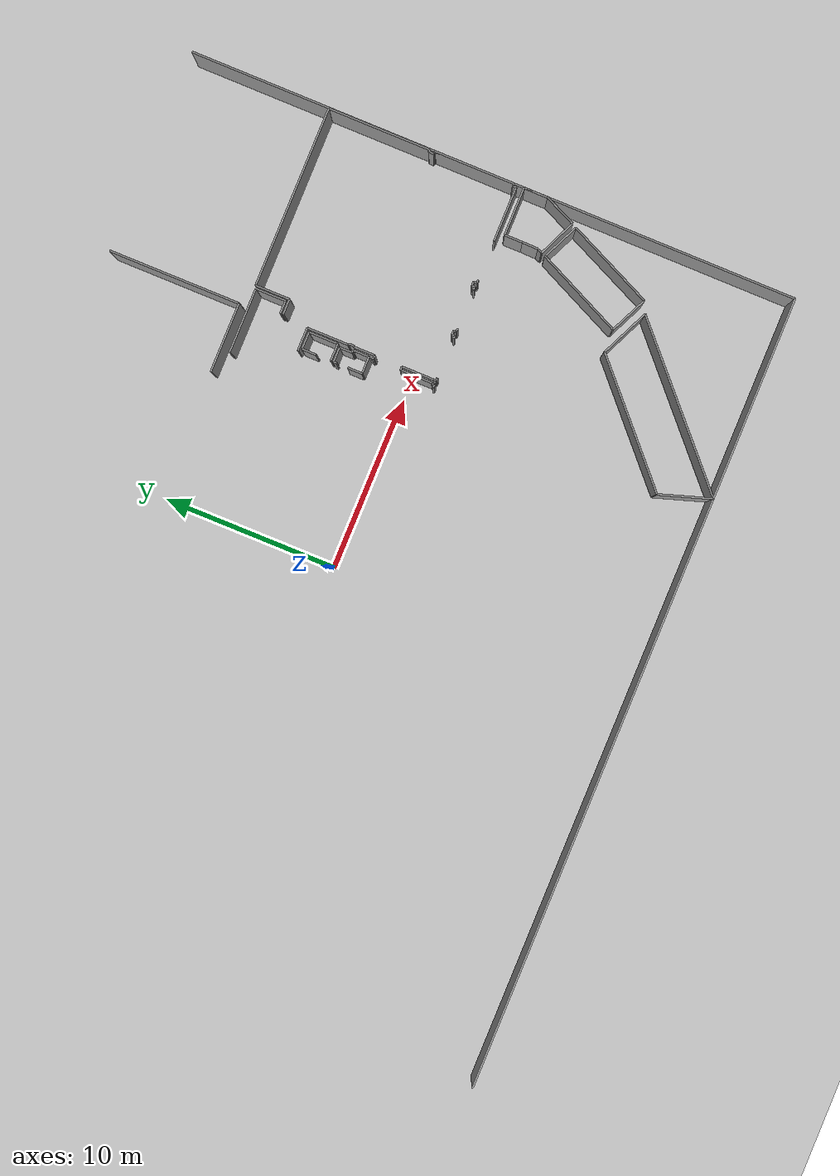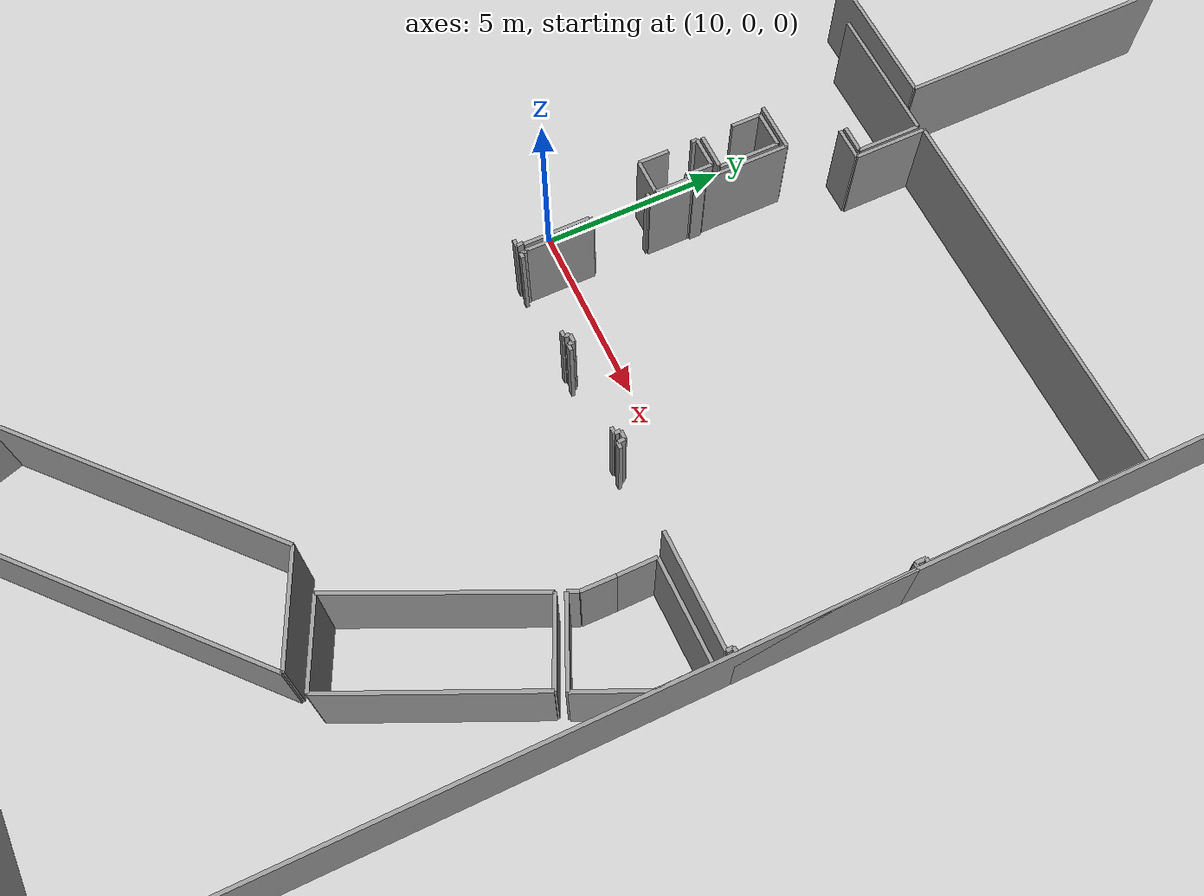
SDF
<sdf version="1.6">
 <world name="default">
  <model name="ground_plane">
   <static>1</static>
   <link name="link">
    <collision name="collision">
     <geometry><plane><normal>0 0 1</normal><size>100 100</size></plane></geometry>
     <surface><friction><ode><mu>100</mu><mu2>50</mu2></ode></friction></surface>
    </collision>
    <visual name="visual">
     <cast_shadows>0</cast_shadows>
     <geometry><plane><normal>0 0 1</normal><size>100 100</size></plane></geometry>
     <material>
      <script><uri>file://media/materials/scripts/gazebo.material</uri><name>Gazebo/Grey</name></script>
     </material>
    </visual>
   </link>
  </model>
  <model name="50009418">
   <static>1</static>
   <link name="Wall_43">
    <collision name="Wall_43_Collision">
     <geometry><box><size>3.13245217921 0.1 2.5</size></box></geometry>
     <pose>1.5662260896 0 1.25 0 0 0</pose>
    </collision>
    <visual name="Wall_43_Visual">
     <pose>1.5662260896 0 1.25 0 0 0</pose>
     <geometry><box><size>3.13245217921 0.1 2.5</size></box></geometry>
     <material>
      <script><uri>file://media/materials/scripts/gazebo.material</uri><name>Gazebo/Grey</name></script>
      <ambient>1 1 1 1</ambient>
     </material>
    </visual>
    <pose>45.5923689685 -18.9636079963 0 0 0 3.14159265359</pose>
   </link>
   <link name="Wall_44">
    <collision name="Wall_44_Collision">
     <geometry><box><size>0.179486528997 0.1 2.5</size></box></geometry>
     <pose>0.0897432644985 0 1.25 0 0 0</pose>
    </collision>
    <visual name="Wall_44_Visual">
     <pose>0.0897432644985 0 1.25 0 0 0</pose>
     <geometry><box><size>0.179486528997 0.1 2.5</size></box></geometry>
     <material>
      <script><uri>file://media/materials/scripts/gazebo.material</uri><name>Gazebo/Grey</name></script>
      <ambient>1 1 1 1</ambient>
     </material>
    </visual>
    <pose>40.1836724339 -18.9636079963 0 0 0 3.14159265359</pose>
   </link>
   <link name="Wall_45">
    <collision name="Wall_45_Collision">
     <geometry><box><size>0.184116393526 0.1 2.5</size></box></geometry>
     <pose>0.0920581967629 0 1.25 0 0 0</pose>
    </collision>
    <visual name="Wall_45_Visual">
     <pose>0.0920581967629 0 1.25 0 0 0</pose>
     <geometry><box><size>0.184116393526 0.1 2.5</size></box></geometry>
     <material>
      <script><uri>file://media/materials/scripts/gazebo.material</uri><name>Gazebo/Grey</name></script>
      <ambient>1 1 1 1</ambient>
     </material>
    </visual>
    <pose>40.0041859049 -18.9636079963 0 0 0 1.57079632679</pose>
   </link>
   <link name="Wall_46">
    <collision name="Wall_46_Collision">
     <geometry><box><size>0.233395910498 0.1 2.5</size></box></geometry>
     <pose>0.116697955249 0 1.25 0 0 0</pose>
    </collision>
    <visual name="Wall_46_Visual">
     <pose>0.116697955249 0 1.25 0 0 0</pose>
     <geometry><box><size>0.233395910498 0.1 2.5</size></box></geometry>
     <material>
      <script><uri>file://media/materials/scripts/gazebo.material</uri><name>Gazebo/Grey</name></script>
      <ambient>1 1 1 1</ambient>
     </material>
    </visual>
    <pose>40.0041859049 -18.7794916028 0 0 0 3.14159265359</pose>
   </link>
   <link name="Wall_47">
    <collision name="Wall_47_Collision">
     <geometry><box><size>0.158493581612 0.1 2.5</size></box></geometry>
     <pose>0.0792467908062 0 1.25 0 0 0</pose>
    </collision>
    <visual name="Wall_47_Visual">
     <pose>0.0792467908062 0 1.25 0 0 0</pose>
     <geometry><box><size>0.158493581612 0.1 2.5</size></box></geometry>
     <material>
      <script><uri>file://media/materials/scripts/gazebo.material</uri><name>Gazebo/Grey</name></script>
      <ambient>1 1 1 1</ambient>
     </material>
    </visual>
    <pose>39.7707899944 -18.7794916028 0 0 0 -1.57079632679</pose>
   </link>
   <link name="Wall_48">
    <collision name="Wall_48_Collision">
     <geometry><box><size>0.179486528997 0.1 2.5</size></box></geometry>
     <pose>0.0897432644985 0 1.25 0 0 0</pose>
    </collision>
    <visual name="Wall_48_Visual">
     <pose>0.0897432644985 0 1.25 0 0 0</pose>
     <geometry><box><size>0.179486528997 0.1 2.5</size></box></geometry>
     <material>
      <script><uri>file://media/materials/scripts/gazebo.material</uri><name>Gazebo/Grey</name></script>
      <ambient>1 1 1 1</ambient>
     </material>
    </visual>
    <pose>39.7707899944 -18.9379851844 0 0 0 3.14159265359</pose>
   </link>
   <link name="Wall_49">
    <collision name="Wall_49_Collision">
     <geometry><box><size>0.187731493226 0.1 2.5</size></box></geometry>
     <pose>0.0938657466132 0 1.25 0 0 0</pose>
    </collision>
    <visual name="Wall_49_Visual">
     <pose>0.0938657466132 0 1.25 0 0 0</pose>
     <geometry><box><size>0.187731493226 0.1 2.5</size></box></geometry>
     <material>
      <script><uri>file://media/materials/scripts/gazebo.material</uri><name>Gazebo/Grey</name></script>
      <ambient>1 1 1 1</ambient>
     </material>
    </visual>
    <pose>37.3397940027 -18.9379851844 0 0 0 3.14159265359</pose>
   </link>
   <link name="Wall_50">
    <collision name="Wall_50_Collision">
     <geometry><box><size>0.150121771779 0.1 2.5</size></box></geometry>
     <pose>0.0750608858897 0 1.25 0 0 0</pose>
    </collision>
    <visual name="Wall_50_Visual">
     <pose>0.0750608858897 0 1.25 0 0 0</pose>
     <geometry><box><size>0.150121771779 0.1 2.5</size></box></geometry>
     <material>
      <script><uri>file://media/materials/scripts/gazebo.material</uri><name>Gazebo/Grey</name></script>
      <ambient>1 1 1 1</ambient>
     </material>
    </visual>
    <pose>37.1520625095 -18.9379851844 0 0 0 1.57079632679</pose>
   </link>
   <link name="Wall_51">
    <collision name="Wall_51_Collision">
     <geometry><box><size>0.237835506621 0.1 2.5</size></box></geometry>
     <pose>0.118917753311 0 1.25 0 0 0</pose>
    </collision>
    <visual name="Wall_51_Visual">
     <pose>0.118917753311 0 1.25 0 0 0</pose>
     <geometry><box><size>0.237835506621 0.1 2.5</size></box></geometry>
     <material>
      <script><uri>file://media/materials/scripts/gazebo.material</uri><name>Gazebo/Grey</name></script>
      <ambient>1 1 1 1</ambient>
     </material>
    </visual>
    <pose>37.1520625095 -18.7878634127 0 0 0 3.14159265359</pose>
   </link>
   <link name="Wall_52">
    <collision name="Wall_52_Collision">
     <geometry><box><size>0.154307676696 0.1 2.5</size></box></geometry>
     <pose>0.077153838348 0 1.25 0 0 0</pose>
    </collision>
    <visual name="Wall_52_Visual">
     <pose>0.077153838348 0 1.25 0 0 0</pose>
     <geometry><box><size>0.154307676696 0.1 2.5</size></box></geometry>
     <material>
      <script><uri>file://media/materials/scripts/gazebo.material</uri><name>Gazebo/Grey</name></script>
      <ambient>1 1 1 1</ambient>
     </material>
    </visual>
    <pose>36.9142270029 -18.7878634127 0 0 0 -1.57079632679</pose>
   </link>
   <link name="Wall_53">
    <collision name="Wall_53_Collision">
     <geometry><box><size>0.158557004414 0.1 2.5</size></box></geometry>
     <pose>0.0792785022071 0 1.25 0 0 0</pose>
    </collision>
    <visual name="Wall_53_Visual">
     <pose>0.0792785022071 0 1.25 0 0 0</pose>
     <geometry><box><size>0.158557004414 0.1 2.5</size></box></geometry>
     <material>
      <script><uri>file://media/materials/scripts/gazebo.material</uri><name>Gazebo/Grey</name></script>
      <ambient>1 1 1 1</ambient>
     </material>
    </visual>
    <pose>36.9142270029 -18.9421710894 0 0 0 3.14159265359</pose>
   </link>
   <link name="Wall_54">
    <collision name="Wall_54_Collision">
     <geometry><box><size>0.145872444061 0.1 2.5</size></box></geometry>
     <pose>0.0729362220305 0 1.25 0 0 0</pose>
    </collision>
    <visual name="Wall_54_Visual">
     <pose>0.0729362220305 0 1.25 0 0 0</pose>
     <geometry><box><size>0.145872444061 0.1 2.5</size></box></geometry>
     <material>
      <script><uri>file://media/materials/scripts/gazebo.material</uri><name>Gazebo/Grey</name></script>
      <ambient>1 1 1 1</ambient>
     </material>
    </visual>
    <pose>34.4661068547 -18.9421710894 0 0 0 3.14159265359</pose>
   </link>
   <link name="Wall_55">
    <collision name="Wall_55_Collision">
     <geometry><box><size>0.148155664925 0.1 2.5</size></box></geometry>
     <pose>0.0740778324623 0 1.25 0 0 0</pose>
    </collision>
    <visual name="Wall_55_Visual">
     <pose>0.0740778324623 0 1.25 0 0 0</pose>
     <geometry><box><size>0.148155664925 0.1 2.5</size></box></geometry>
     <material>
      <script><uri>file://media/materials/scripts/gazebo.material</uri><name>Gazebo/Grey</name></script>
      <ambient>1 1 1 1</ambient>
     </material>
    </visual>
    <pose>34.3202344107 -18.9421710894 0 0 0 1.57079632679</pose>
   </link>
   <link name="Wall_56">
    <collision name="Wall_56_Collision">
     <geometry><box><size>0.020295296565 0.1 2.5</size></box></geometry>
     <pose>0.0101476482825 0 1.25 0 0 0</pose>
    </collision>
    <visual name="Wall_56_Visual">
     <pose>0.0101476482825 0 1.25 0 0 0</pose>
     <geometry><box><size>0.020295296565 0.1 2.5</size></box></geometry>
     <material>
      <script><uri>file://media/materials/scripts/gazebo.material</uri><name>Gazebo/Grey</name></script>
      <ambient>1 1 1 1</ambient>
     </material>
    </visual>
    <pose>34.3202344107 -18.7940154244 0 0 0 3.14159265359</pose>
   </link>
   <link name="Wall_57">
    <collision name="Wall_57_Collision">
     <geometry><box><size>1.84775990664 0.1 2.5</size></box></geometry>
     <pose>0.923879953321 0 1.25 0 0 0</pose>
    </collision>
    <visual name="Wall_57_Visual">
     <pose>0.923879953321 0 1.25 0 0 0</pose>
     <geometry><box><size>1.84775990664 0.1 2.5</size></box></geometry>
     <material>
      <script><uri>file://media/materials/scripts/gazebo.material</uri><name>Gazebo/Grey</name></script>
      <ambient>1 1 1 1</ambient>
     </material>
    </visual>
    <pose>34.2999391141 -18.7940154244 0 0 0 1.57079632679</pose>
   </link>
   <link name="Wall_58">
    <collision name="Wall_58_Collision">
     <geometry><box><size>0.182657669085 0.1 2.5</size></box></geometry>
     <pose>0.0913288345426 0 1.25 0 0 0</pose>
    </collision>
    <visual name="Wall_58_Visual">
     <pose>0.0913288345426 0 1.25 0 0 0</pose>
     <geometry><box><size>0.182657669085 0.1 2.5</size></box></geometry>
     <material>
      <script><uri>file://media/materials/scripts/gazebo.material</uri><name>Gazebo/Grey</name></script>
      <ambient>1 1 1 1</ambient>
     </material>
    </visual>
    <pose>34.2999391141 -16.9462555178 0 0 0 3.14159265359</pose>
   </link>
   <link name="Wall_62">
    <collision name="Wall_62_Collision">
     <geometry><box><size>0.0943097062256 0.1 2.5</size></box></geometry>
     <pose>0.0471548531128 0 1.25 0 0 0</pose>
    </collision>
    <visual name="Wall_62_Visual">
     <pose>0.0471548531128 0 1.25 0 0 0</pose>
     <geometry><box><size>0.0943097062256 0.1 2.5</size></box></geometry>
     <material>
      <script><uri>file://media/materials/scripts/gazebo.material</uri><name>Gazebo/Grey</name></script>
      <ambient>1 1 1 1</ambient>
     </material>
    </visual>
    <pose>34.1229894972 -15.2827388503 0 0 0 -1.57079632679</pose>
   </link>
   <link name="Wall_63">
    <collision name="Wall_63_Collision">
     <geometry><box><size>0.18138921305 0.1 2.5</size></box></geometry>
     <pose>0.0906946065249 0 1.25 0 0 0</pose>
    </collision>
    <visual name="Wall_63_Visual">
     <pose>0.0906946065249 0 1.25 0 0 0</pose>
     <geometry><box><size>0.18138921305 0.1 2.5</size></box></geometry>
     <material>
      <script><uri>file://media/materials/scripts/gazebo.material</uri><name>Gazebo/Grey</name></script>
      <ambient>1 1 1 1</ambient>
     </material>
    </visual>
    <pose>34.1229894972 -15.3770485565 0 0 0 0.0</pose>
   </link>
   <link name="Wall_64">
    <collision name="Wall_64_Collision">
     <geometry><box><size>1.21118524532 0.1 2.5</size></box></geometry>
     <pose>0.60559262266 0 1.25 0 0 0</pose>
    </collision>
    <visual name="Wall_64_Visual">
     <pose>0.60559262266 0 1.25 0 0 0</pose>
     <geometry><box><size>1.21118524532 0.1 2.5</size></box></geometry>
     <material>
      <script><uri>file://media/materials/scripts/gazebo.material</uri><name>Gazebo/Grey</name></script>
      <ambient>1 1 1 1</ambient>
     </material>
    </visual>
    <pose>34.3043787102 -15.3770485565 0 0 0 1.57079632679</pose>
   </link>
   <link name="Wall_65">
    <collision name="Wall_65_Collision">
     <geometry><box><size>0.0507382414125 0.1 2.5</size></box></geometry>
     <pose>0.0253691207063 0 1.25 0 0 0</pose>
    </collision>
    <visual name="Wall_65_Visual">
     <pose>0.0253691207063 0 1.25 0 0 0</pose>
     <geometry><box><size>0.0507382414125 0.1 2.5</size></box></geometry>
     <material>
      <script><uri>file://media/materials/scripts/gazebo.material</uri><name>Gazebo/Grey</name></script>
      <ambient>1 1 1 1</ambient>
     </material>
    </visual>
    <pose>34.3043787102 -14.1658633112 0 0 0 0.0</pose>
   </link>
   <link name="Wall_66">
    <collision name="Wall_66_Collision">
     <geometry><box><size>0.333603937288 0.1 2.5</size></box></geometry>
     <pose>0.166801968644 0 1.25 0 0 0</pose>
    </collision>
    <visual name="Wall_66_Visual">
     <pose>0.166801968644 0 1.25 0 0 0</pose>
     <geometry><box><size>0.333603937288 0.1 2.5</size></box></geometry>
     <material>
      <script><uri>file://media/materials/scripts/gazebo.material</uri><name>Gazebo/Grey</name></script>
      <ambient>1 1 1 1</ambient>
     </material>
    </visual>
    <pose>34.3551169516 -14.1658633112 0 0 0 1.57079632679</pose>
   </link>
   <link name="Wall_67">
    <collision name="Wall_67_Collision">
     <geometry><box><size>0.0577147496068 0.1 2.5</size></box></geometry>
     <pose>0.0288573748034 0 1.25 0 0 0</pose>
    </collision>
    <visual name="Wall_67_Visual">
     <pose>0.0288573748034 0 1.25 0 0 0</pose>
     <geometry><box><size>0.0577147496068 0.1 2.5</size></box></geometry>
     <material>
      <script><uri>file://media/materials/scripts/gazebo.material</uri><name>Gazebo/Grey</name></script>
      <ambient>1 1 1 1</ambient>
     </material>
    </visual>
    <pose>34.3551169516 -13.8322593739 0 0 0 3.14159265359</pose>
   </link>
   <link name="Wall_68">
    <collision name="Wall_68_Collision">
     <geometry><box><size>2.38843929169 0.1 2.5</size></box></geometry>
     <pose>1.19421964585 0 1.25 0 0 0</pose>
    </collision>
    <visual name="Wall_68_Visual">
     <pose>1.19421964585 0 1.25 0 0 0</pose>
     <geometry><box><size>2.38843929169 0.1 2.5</size></box></geometry>
     <material>
      <script><uri>file://media/materials/scripts/gazebo.material</uri><name>Gazebo/Grey</name></script>
      <ambient>1 1 1 1</ambient>
     </material>
    </visual>
    <pose>34.297402202 -13.8322593739 0 0 0 1.57079632679</pose>
   </link>
   <link name="Wall_69">
    <collision name="Wall_69_Collision">
     <geometry><box><size>1.32160434319 0.1 2.5</size></box></geometry>
     <pose>0.660802171597 0 1.25 0 0 0</pose>
    </collision>
    <visual name="Wall_69_Visual">
     <pose>0.660802171597 0 1.25 0 0 0</pose>
     <geometry><box><size>1.32160434319 0.1 2.5</size></box></geometry>
     <material>
      <script><uri>file://media/materials/scripts/gazebo.material</uri><name>Gazebo/Grey</name></script>
      <ambient>1 1 1 1</ambient>
     </material>
    </visual>
    <pose>34.297402202 -11.4438200822 0 0 0 3.14159265359</pose>
   </link>
   <link name="Wall_71">
    <collision name="Wall_71_Collision">
     <geometry><box><size>0.887284996702 0.1 2.5</size></box></geometry>
     <pose>0.443642498351 0 1.25 0 0 0</pose>
    </collision>
    <visual name="Wall_71_Visual">
     <pose>0.443642498351 0 1.25 0 0 0</pose>
     <geometry><box><size>0.887284996702 0.1 2.5</size></box></geometry>
     <material>
      <script><uri>file://media/materials/scripts/gazebo.material</uri><name>Gazebo/Grey</name></script>
      <ambient>1 1 1 1</ambient>
     </material>
    </visual>
    <pose>34.4724491349 -9.96822517632 0 0 0 0.0</pose>
   </link>
   <link name="Wall_72">
    <collision name="Wall_72_Collision">
     <geometry><box><size>1.97105383327 0.1 2.5</size></box></geometry>
     <pose>0.985526916637 0 1.25 0 0 0</pose>
    </collision>
    <visual name="Wall_72_Visual">
     <pose>0.985526916637 0 1.25 0 0 0</pose>
     <geometry><box><size>1.97105383327 0.1 2.5</size></box></geometry>
     <material>
      <script><uri>file://media/materials/scripts/gazebo.material</uri><name>Gazebo/Grey</name></script>
      <ambient>1 1 1 1</ambient>
     </material>
    </visual>
    <pose>35.3597341316 -9.96822517632 0 0 0 1.57079632679</pose>
   </link>
   <link name="Wall_73">
    <collision name="Wall_73_Collision">
     <geometry><box><size>10.3474301081 0.1 2.5</size></box></geometry>
     <pose>5.17371505404 0 1.25 0 0 0</pose>
    </collision>
    <visual name="Wall_73_Visual">
     <pose>5.17371505404 0 1.25 0 0 0</pose>
     <geometry><box><size>10.3474301081 0.1 2.5</size></box></geometry>
     <material>
      <script><uri>file://media/materials/scripts/gazebo.material</uri><name>Gazebo/Grey</name></script>
      <ambient>1 1 1 1</ambient>
     </material>
    </visual>
    <pose>35.3597341316 -7.99717134304 0 0 0 0.0</pose>
   </link>
   <link name="Wall_74">
    <collision name="Wall_74_Collision">
     <geometry><box><size>5.88595311786 0.1 2.5</size></box></geometry>
     <pose>2.94297655893 0 1.25 0 0 0</pose>
    </collision>
    <visual name="Wall_74_Visual">
     <pose>2.94297655893 0 1.25 0 0 0</pose>
     <geometry><box><size>5.88595311786 0.1 2.5</size></box></geometry>
     <material>
      <script><uri>file://media/materials/scripts/gazebo.material</uri><name>Gazebo/Grey</name></script>
      <ambient>1 1 1 1</ambient>
     </material>
    </visual>
    <pose>45.7071642397 -7.99717134304 0 0 0 -1.57079632679</pose>
   </link>
   <link name="Wall_75">
    <collision name="Wall_75_Collision">
     <geometry><box><size>0.117966411284 0.1 2.5</size></box></geometry>
     <pose>0.0589832056421 0 1.25 0 0 0</pose>
    </collision>
    <visual name="Wall_75_Visual">
     <pose>0.0589832056421 0 1.25 0 0 0</pose>
     <geometry><box><size>0.117966411284 0.1 2.5</size></box></geometry>
     <material>
      <script><uri>file://media/materials/scripts/gazebo.material</uri><name>Gazebo/Grey</name></script>
      <ambient>1 1 1 1</ambient>
     </material>
    </visual>
    <pose>45.7071642397 -13.8831244609 0 0 0 3.14159265359</pose>
   </link>
   <link name="Wall_76">
    <collision name="Wall_76_Collision">
     <geometry><box><size>0.281089857426 0.1 2.5</size></box></geometry>
     <pose>0.140544928713 0 1.25 0 0 0</pose>
    </collision>
    <visual name="Wall_76_Visual">
     <pose>0.140544928713 0 1.25 0 0 0</pose>
     <geometry><box><size>0.281089857426 0.1 2.5</size></box></geometry>
     <material>
      <script><uri>file://media/materials/scripts/gazebo.material</uri><name>Gazebo/Grey</name></script>
      <ambient>1 1 1 1</ambient>
     </material>
    </visual>
    <pose>45.5891978284 -13.8831244609 0 0 0 -1.57079632679</pose>
   </link>
   <link name="Wall_77">
    <collision name="Wall_77_Collision">
     <geometry><box><size>0.145872444061 0.1 2.5</size></box></geometry>
     <pose>0.0729362220305 0 1.25 0 0 0</pose>
    </collision>
    <visual name="Wall_77_Visual">
     <pose>0.0729362220305 0 1.25 0 0 0</pose>
     <geometry><box><size>0.145872444061 0.1 2.5</size></box></geometry>
     <material>
      <script><uri>file://media/materials/scripts/gazebo.material</uri><name>Gazebo/Grey</name></script>
      <ambient>1 1 1 1</ambient>
     </material>
    </visual>
    <pose>45.5891978284 -14.1642143183 0 0 0 0.0</pose>
   </link>
   <link name="Wall_78">
    <collision name="Wall_78_Collision">
     <geometry><box><size>4.61115480237 0.1 2.5</size></box></geometry>
     <pose>2.30557740119 0 1.25 0 0 0</pose>
    </collision>
    <visual name="Wall_78_Visual">
     <pose>2.30557740119 0 1.25 0 0 0</pose>
     <geometry><box><size>4.61115480237 0.1 2.5</size></box></geometry>
     <material>
      <script><uri>file://media/materials/scripts/gazebo.material</uri><name>Gazebo/Grey</name></script>
      <ambient>1 1 1 1</ambient>
     </material>
    </visual>
    <pose>45.7350702725 -14.1642143183 0 0 0 -1.57079632679</pose>
   </link>
   <link name="Wall_79">
    <collision name="Wall_79_Collision">
     <geometry><box><size>0.154117408291 0.1 2.5</size></box></geometry>
     <pose>0.0770587041453 0 1.25 0 0 0</pose>
    </collision>
    <visual name="Wall_79_Visual">
     <pose>0.0770587041453 0 1.25 0 0 0</pose>
     <geometry><box><size>0.154117408291 0.1 2.5</size></box></geometry>
     <material>
      <script><uri>file://media/materials/scripts/gazebo.material</uri><name>Gazebo/Grey</name></script>
      <ambient>1 1 1 1</ambient>
     </material>
    </visual>
    <pose>45.7350702725 -18.7753691207 0 0 0 3.14159265359</pose>
   </link>
   <link name="Wall_80">
    <collision name="Wall_80_Collision">
     <geometry><box><size>0.188584733582 0.1 2.5</size></box></geometry>
     <pose>0.094292366791 0 1.25 0 0 0</pose>
    </collision>
    <visual name="Wall_80_Visual">
     <pose>0.094292366791 0 1.25 0 0 0</pose>
     <geometry><box><size>0.188584733582 0.1 2.5</size></box></geometry>
     <material>
      <script><uri>file://media/materials/scripts/gazebo.material</uri><name>Gazebo/Grey</name></script>
      <ambient>1 1 1 1</ambient>
     </material>
    </visual>
    <pose>45.5809528642 -18.7753691207 0 0 0 -1.51022361691</pose>
   </link>
   <link name="Wall_81">
    <collision name="Wall_81_Collision">
     <geometry><box><size>1.7312522198 0.1 2.5</size></box></geometry>
     <pose>0.865626109899 0 1.25 0 0 0</pose>
    </collision>
    <visual name="Wall_81_Visual">
     <pose>0.865626109899 0 1.25 0 0 0</pose>
     <geometry><box><size>1.7312522198 0.1 2.5</size></box></geometry>
     <material>
      <script><uri>file://media/materials/scripts/gazebo.material</uri><name>Gazebo/Grey</name></script>
      <ambient>1 1 1 1</ambient>
     </material>
    </visual>
    <pose>35.2100563194 -9.80992186311 0 0 0 1.57079632679</pose>
   </link>
   <link name="Wall_82">
    <collision name="Wall_82_Collision">
     <geometry><box><size>3.72520168451 0.1 2.5</size></box></geometry>
     <pose>1.86260084225 0 1.25 0 0 0</pose>
    </collision>
    <visual name="Wall_82_Visual">
     <pose>1.86260084225 0 1.25 0 0 0</pose>
     <geometry><box><size>3.72520168451 0.1 2.5</size></box></geometry>
     <material>
      <script><uri>file://media/materials/scripts/gazebo.material</uri><name>Gazebo/Grey</name></script>
      <ambient>1 1 1 1</ambient>
     </material>
    </visual>
    <pose>35.2100563194 -8.07866964331 0 0 0 3.14159265359</pose>
   </link>
   <link name="Wall_85">
    <collision name="Wall_85_Collision">
     <geometry><box><size>0.747148065076 0.1 2.5</size></box></geometry>
     <pose>0.373574032538 0 1.25 0 0 0</pose>
    </collision>
    <visual name="Wall_85_Visual">
     <pose>0.373574032538 0 1.25 0 0 0</pose>
     <geometry><box><size>0.747148065076 0.1 2.5</size></box></geometry>
     <material>
      <script><uri>file://media/materials/scripts/gazebo.material</uri><name>Gazebo/Grey</name></script>
      <ambient>1 1 1 1</ambient>
     </material>
    </visual>
    <pose>34.4629357146 -9.80351616013 0 0 0 -0.0085736439083</pose>
   </link>
   <link name="Wall_94">
    <collision name="Wall_94_Collision">
     <geometry><box><size>0.187097265209 0.1 2.5</size></box></geometry>
     <pose>0.0935486326044 0 1.25 0 0 0</pose>
    </collision>
    <visual name="Wall_94_Visual">
     <pose>0.0935486326044 0 1.25 0 0 0</pose>
     <geometry><box><size>0.187097265209 0.1 2.5</size></box></geometry>
     <material>
      <script><uri>file://media/materials/scripts/gazebo.material</uri><name>Gazebo/Grey</name></script>
      <ambient>1 1 1 1</ambient>
     </material>
    </visual>
    <pose>34.0843015881 -18.9409026333 0 0 0 3.14159265359</pose>
   </link>
   <link name="Wall_99">
    <collision name="Wall_99_Collision">
     <geometry><box><size>1.80983307119 0.1 2.5</size></box></geometry>
     <pose>0.904916535593 0 1.25 0 0 0</pose>
    </collision>
    <visual name="Wall_99_Visual">
     <pose>0.904916535593 0 1.25 0 0 0</pose>
     <geometry><box><size>1.80983307119 0.1 2.5</size></box></geometry>
     <material>
      <script><uri>file://media/materials/scripts/gazebo.material</uri><name>Gazebo/Grey</name></script>
      <ambient>1 1 1 1</ambient>
     </material>
    </visual>
    <pose>34.116012989 -16.9613501446 0 0 0 -1.57079632679</pose>
   </link>
   <link name="Wall_100">
    <collision name="Wall_100_Collision">
     <geometry><box><size>0.0437617332183 0.1 2.5</size></box></geometry>
     <pose>0.0218808666092 0 1.25 0 0 0</pose>
    </collision>
    <visual name="Wall_100_Visual">
     <pose>0.0218808666092 0 1.25 0 0 0</pose>
     <geometry><box><size>0.0437617332183 0.1 2.5</size></box></geometry>
     <material>
      <script><uri>file://media/materials/scripts/gazebo.material</uri><name>Gazebo/Grey</name></script>
      <ambient>1 1 1 1</ambient>
     </material>
    </visual>
    <pose>34.116012989 -18.7711832158 0 0 0 3.14159265359</pose>
   </link>
   <link name="Wall_101">
    <collision name="Wall_101_Collision">
     <geometry><box><size>0.170146675531 0.1 2.5</size></box></geometry>
     <pose>0.0850733377657 0 1.25 0 0 0</pose>
    </collision>
    <visual name="Wall_101_Visual">
     <pose>0.0850733377657 0 1.25 0 0 0</pose>
     <geometry><box><size>0.170146675531 0.1 2.5</size></box></geometry>
     <material>
      <script><uri>file://media/materials/scripts/gazebo.material</uri><name>Gazebo/Grey</name></script>
      <ambient>1 1 1 1</ambient>
     </material>
    </visual>
    <pose>34.0722512558 -18.7711832158 0 0 0 -1.49991378364</pose>
   </link>
   <link name="Wall_102">
    <collision name="Wall_102_Collision">
     <geometry><box><size>0.992313156426 0.1 2.5</size></box></geometry>
     <pose>0.496156578213 0 1.25 0 0 0</pose>
    </collision>
    <visual name="Wall_102_Visual">
     <pose>0.496156578213 0 1.25 0 0 0</pose>
     <geometry><box><size>0.992313156426 0.1 2.5</size></box></geometry>
     <material>
      <script><uri>file://media/materials/scripts/gazebo.material</uri><name>Gazebo/Grey</name></script>
      <ambient>1 1 1 1</ambient>
     </material>
    </visual>
    <pose>34.1325029174 -13.2915799888 0 0 0 3.14159265359</pose>
   </link>
   <link name="Wall_104">
    <collision name="Wall_104_Collision">
     <geometry><box><size>0.82005682683 0.1 2.5</size></box></geometry>
     <pose>0.410028413415 0 1.25 0 0 0</pose>
    </collision>
    <visual name="Wall_104_Visual">
     <pose>0.410028413415 0 1.25 0 0 0</pose>
     <geometry><box><size>0.82005682683 0.1 2.5</size></box></geometry>
     <material>
      <script><uri>file://media/materials/scripts/gazebo.material</uri><name>Gazebo/Grey</name></script>
      <ambient>1 1 1 1</ambient>
     </material>
    </visual>
    <pose>33.140189761 -12.4379724999 0 0 0 1.57079632679</pose>
   </link>
   <link name="Wall_105">
    <collision name="Wall_105_Collision">
     <geometry><box><size>0.991678928408 0.1 2.5</size></box></geometry>
     <pose>0.495839464204 0 1.25 0 0 0</pose>
    </collision>
    <visual name="Wall_105_Visual">
     <pose>0.495839464204 0 1.25 0 0 0</pose>
     <geometry><box><size>0.991678928408 0.1 2.5</size></box></geometry>
     <material>
      <script><uri>file://media/materials/scripts/gazebo.material</uri><name>Gazebo/Grey</name></script>
      <ambient>1 1 1 1</ambient>
     </material>
    </visual>
    <pose>33.140189761 -11.617915673 0 0 0 0.0</pose>
   </link>
   <link name="Wall_106">
    <collision name="Wall_106_Collision">
     <geometry><box><size>1.67366443596 0.1 2.5</size></box></geometry>
     <pose>0.836832217982 0 1.25 0 0 0</pose>
    </collision>
    <visual name="Wall_106_Visual">
     <pose>0.836832217982 0 1.25 0 0 0</pose>
     <geometry><box><size>1.67366443596 0.1 2.5</size></box></geometry>
     <material>
      <script><uri>file://media/materials/scripts/gazebo.material</uri><name>Gazebo/Grey</name></script>
      <ambient>1 1 1 1</ambient>
     </material>
    </visual>
    <pose>34.1318686894 -11.617915673 0 0 0 -1.57041738104</pose>
   </link>
   <link name="Wall_107">
    <collision name="Wall_107_Collision">
     <geometry><box><size>0.976076919174 0.1 2.5</size></box></geometry>
     <pose>0.488038459587 0 1.25 0 0 0</pose>
    </collision>
    <visual name="Wall_107_Visual">
     <pose>0.488038459587 0 1.25 0 0 0</pose>
     <geometry><box><size>0.976076919174 0.1 2.5</size></box></geometry>
     <material>
      <script><uri>file://media/materials/scripts/gazebo.material</uri><name>Gazebo/Grey</name></script>
      <ambient>1 1 1 1</ambient>
     </material>
    </visual>
    <pose>34.1204525851 -15.1097848699 0 0 0 3.14159265359</pose>
   </link>
   <link name="Wall_108">
    <collision name="Wall_108_Collision">
     <geometry><box><size>0.834009843219 0.1 2.5</size></box></geometry>
     <pose>0.417004921609 0 1.25 0 0 0</pose>
    </collision>
    <visual name="Wall_108_Visual">
     <pose>0.417004921609 0 1.25 0 0 0</pose>
     <geometry><box><size>0.834009843219 0.1 2.5</size></box></geometry>
     <material>
      <script><uri>file://media/materials/scripts/gazebo.material</uri><name>Gazebo/Grey</name></script>
      <ambient>1 1 1 1</ambient>
     </material>
    </visual>
    <pose>33.1443756659 -15.1097848699 0 0 0 1.57079632679</pose>
   </link>
   <link name="Wall_109">
    <collision name="Wall_109_Collision">
     <geometry><box><size>0.15766908519 0.1 2.5</size></box></geometry>
     <pose>0.0788345425948 0 1.25 0 0 0</pose>
    </collision>
    <visual name="Wall_109_Visual">
     <pose>0.0788345425948 0 1.25 0 0 0</pose>
     <geometry><box><size>0.15766908519 0.1 2.5</size></box></geometry>
     <material>
      <script><uri>file://media/materials/scripts/gazebo.material</uri><name>Gazebo/Grey</name></script>
      <ambient>1 1 1 1</ambient>
     </material>
    </visual>
    <pose>33.1443756659 -13.6101527221 0 0 0 1.57079632679</pose>
   </link>
   <link name="Wall_110">
    <collision name="Wall_110_Collision">
     <geometry><box><size>0.846694403572 0.1 2.5</size></box></geometry>
     <pose>0.423347201786 0 1.25 0 0 0</pose>
    </collision>
    <visual name="Wall_110_Visual">
     <pose>0.423347201786 0 1.25 0 0 0</pose>
     <geometry><box><size>0.846694403572 0.1 2.5</size></box></geometry>
     <material>
      <script><uri>file://media/materials/scripts/gazebo.material</uri><name>Gazebo/Grey</name></script>
      <ambient>1 1 1 1</ambient>
     </material>
    </visual>
    <pose>33.1443756659 -13.4524836369 0 0 0 0.0</pose>
   </link>
   <link name="Wall_111">
    <collision name="Wall_111_Collision">
     <geometry><box><size>0.744012887513 0.1 2.5</size></box></geometry>
     <pose>0.372006443757 0 1.25 0 0 0</pose>
    </collision>
    <visual name="Wall_111_Visual">
     <pose>0.372006443757 0 1.25 0 0 0</pose>
     <geometry><box><size>0.744012887513 0.1 2.5</size></box></geometry>
     <material>
      <script><uri>file://media/materials/scripts/gazebo.material</uri><name>Gazebo/Grey</name></script>
      <ambient>1 1 1 1</ambient>
     </material>
    </visual>
    <pose>33.9910700695 -13.4524836369 0 0 0 -1.57079632679</pose>
   </link>
   <link name="Wall_112">
    <collision name="Wall_112_Collision">
     <geometry><box><size>0.137627479832 0.1 2.5</size></box></geometry>
     <pose>0.0688137399158 0 1.25 0 0 0</pose>
    </collision>
    <visual name="Wall_112_Visual">
     <pose>0.0688137399158 0 1.25 0 0 0</pose>
     <geometry><box><size>0.137627479832 0.1 2.5</size></box></geometry>
     <material>
      <script><uri>file://media/materials/scripts/gazebo.material</uri><name>Gazebo/Grey</name></script>
      <ambient>1 1 1 1</ambient>
     </material>
    </visual>
    <pose>33.9910700695 -14.1964965244 0 0 0 0.0</pose>
   </link>
   <link name="Wall_113">
    <collision name="Wall_113_Collision">
     <geometry><box><size>0.91332556152 0.1 2.5</size></box></geometry>
     <pose>0.45666278076 0 1.25 0 0 0</pose>
    </collision>
    <visual name="Wall_113_Visual">
     <pose>0.45666278076 0 1.25 0 0 0</pose>
     <geometry><box><size>0.91332556152 0.1 2.5</size></box></geometry>
     <material>
      <script><uri>file://media/materials/scripts/gazebo.material</uri><name>Gazebo/Grey</name></script>
      <ambient>1 1 1 1</ambient>
     </material>
    </visual>
    <pose>34.1286975493 -14.1964965244 0 0 0 -1.57982385933</pose>
   </link>
   <link name="Wall_114">
    <collision name="Wall_114_Collision">
     <geometry><box><size>2.30190021876 0.1 2.5</size></box></geometry>
     <pose>1.15095010938 0 1.25 0 0 0</pose>
    </collision>
    <visual name="Wall_114_Visual">
     <pose>1.15095010938 0 1.25 0 0 0</pose>
     <geometry><box><size>2.30190021876 0.1 2.5</size></box></geometry>
     <material>
      <script><uri>file://media/materials/scripts/gazebo.material</uri><name>Gazebo/Grey</name></script>
      <ambient>1 1 1 1</ambient>
     </material>
    </visual>
    <pose>44.9410167944 -22.5081181186 0 0 0 2.72633929368</pose>
   </link>
   <link name="Wall_115">
    <collision name="Wall_115_Collision">
     <geometry><box><size>0.293547393634 0.1 2.5</size></box></geometry>
     <pose>0.146773696817 0 1.25 0 0 0</pose>
    </collision>
    <visual name="Wall_115_Visual">
     <pose>0.146773696817 0 1.25 0 0 0</pose>
     <geometry><box><size>0.293547393634 0.1 2.5</size></box></geometry>
     <material>
      <script><uri>file://media/materials/scripts/gazebo.material</uri><name>Gazebo/Grey</name></script>
      <ambient>1 1 1 1</ambient>
     </material>
    </visual>
    <pose>42.8347455477 -21.5794814552 0 0 0 1.12396197677</pose>
   </link>
   <link name="Wall_116">
    <collision name="Wall_116_Collision">
     <geometry><box><size>0.915668279197 0.1 2.5</size></box></geometry>
     <pose>0.457834139598 0 1.25 0 0 0</pose>
    </collision>
    <visual name="Wall_116_Visual">
     <pose>0.457834139598 0 1.25 0 0 0</pose>
     <geometry><box><size>0.915668279197 0.1 2.5</size></box></geometry>
     <material>
      <script><uri>file://media/materials/scripts/gazebo.material</uri><name>Gazebo/Grey</name></script>
      <ambient>1 1 1 1</ambient>
     </material>
    </visual>
    <pose>42.9615911513 -21.3147546806 0 0 0 1.55209397008</pose>
   </link>
   <link name="Wall_117">
    <collision name="Wall_117_Collision">
     <geometry><box><size>1.03131817951 0.1 2.5</size></box></geometry>
     <pose>0.515659089756 0 1.25 0 0 0</pose>
    </collision>
    <visual name="Wall_117_Visual">
     <pose>0.515659089756 0 1.25 0 0 0</pose>
     <geometry><box><size>1.03131817951 0.1 2.5</size></box></geometry>
     <material>
      <script><uri>file://media/materials/scripts/gazebo.material</uri><name>Gazebo/Grey</name></script>
      <ambient>1 1 1 1</ambient>
     </material>
    </visual>
    <pose>42.9787153077 -20.3992465371 0 0 0 1.57079632679</pose>
   </link>
   <link name="Wall_118">
    <collision name="Wall_118_Collision">
     <geometry><box><size>2.75192077394 0.1 2.5</size></box></geometry>
     <pose>1.37596038697 0 1.25 0 0 0</pose>
    </collision>
    <visual name="Wall_118_Visual">
     <pose>1.37596038697 0 1.25 0 0 0</pose>
     <geometry><box><size>2.75192077394 0.1 2.5</size></box></geometry>
     <material>
      <script><uri>file://media/materials/scripts/gazebo.material</uri><name>Gazebo/Grey</name></script>
      <ambient>1 1 1 1</ambient>
     </material>
    </visual>
    <pose>42.9787153077 -19.3679283576 0 0 0 0.00198202091232</pose>
   </link>
   <link name="Wall_119">
    <collision name="Wall_119_Collision">
     <geometry><box><size>1.38426607134 0.1 2.5</size></box></geometry>
     <pose>0.692133035669 0 1.25 0 0 0</pose>
    </collision>
    <visual name="Wall_119_Visual">
     <pose>0.692133035669 0 1.25 0 0 0</pose>
     <geometry><box><size>1.38426607134 0.1 2.5</size></box></geometry>
     <material>
      <script><uri>file://media/materials/scripts/gazebo.material</uri><name>Gazebo/Grey</name></script>
      <ambient>1 1 1 1</ambient>
     </material>
    </visual>
    <pose>45.7306306763 -19.3624739967 0 0 0 -1.57079632679</pose>
   </link>
   <link name="Wall_120">
    <collision name="Wall_120_Collision">
     <geometry><box><size>1.93027011578 0.1 2.5</size></box></geometry>
     <pose>0.965135057892 0 1.25 0 0 0</pose>
    </collision>
    <visual name="Wall_120_Visual">
     <pose>0.965135057892 0 1.25 0 0 0</pose>
     <geometry><box><size>1.93027011578 0.1 2.5</size></box></geometry>
     <material>
      <script><uri>file://media/materials/scripts/gazebo.material</uri><name>Gazebo/Grey</name></script>
      <ambient>1 1 1 1</ambient>
     </material>
    </visual>
    <pose>45.7306306763 -20.746740068 0 0 0 -1.99223000789</pose>
   </link>
   <link name="Wall_121">
    <collision name="Wall_121_Collision">
     <geometry><box><size>2.29302478309 0.1 2.5</size></box></geometry>
     <pose>1.14651239154 0 1.25 0 0 0</pose>
    </collision>
    <visual name="Wall_121_Visual">
     <pose>1.14651239154 0 1.25 0 0 0</pose>
     <geometry><box><size>2.29302478309 0.1 2.5</size></box></geometry>
     <material>
      <script><uri>file://media/materials/scripts/gazebo.material</uri><name>Gazebo/Grey</name></script>
      <ambient>1 1 1 1</ambient>
     </material>
    </visual>
    <pose>42.5506113958 -27.6665482774 0 0 0 2.70741342635</pose>
   </link>
   <link name="Wall_122">
    <collision name="Wall_122_Collision">
     <geometry><box><size>5.38023586945 0.1 2.5</size></box></geometry>
     <pose>2.69011793472 0 1.25 0 0 0</pose>
    </collision>
    <visual name="Wall_122_Visual">
     <pose>2.69011793472 0 1.25 0 0 0</pose>
     <geometry><box><size>5.38023586945 0.1 2.5</size></box></geometry>
     <material>
      <script><uri>file://media/materials/scripts/gazebo.material</uri><name>Gazebo/Grey</name></script>
      <ambient>1 1 1 1</ambient>
     </material>
    </visual>
    <pose>40.4703434979 -26.7019508854 0 0 0 1.13591036398</pose>
   </link>
   <link name="Wall_123">
    <collision name="Wall_123_Collision">
     <geometry><box><size>2.26178740763 0.1 2.5</size></box></geometry>
     <pose>1.13089370382 0 1.25 0 0 0</pose>
    </collision>
    <visual name="Wall_123_Visual">
     <pose>1.13089370382 0 1.25 0 0 0</pose>
     <geometry><box><size>2.26178740763 0.1 2.5</size></box></geometry>
     <material>
      <script><uri>file://media/materials/scripts/gazebo.material</uri><name>Gazebo/Grey</name></script>
      <ambient>1 1 1 1</ambient>
     </material>
    </visual>
    <pose>42.737074433 -21.8225176315 0 0 0 -0.429029410045</pose>
   </link>
   <link name="Wall_124">
    <collision name="Wall_124_Collision">
     <geometry><box><size>5.39195221553 0.1 2.5</size></box></geometry>
     <pose>2.69597610776 0 1.25 0 0 0</pose>
    </collision>
    <visual name="Wall_124_Visual">
     <pose>2.69597610776 0 1.25 0 0 0</pose>
     <geometry><box><size>5.39195221553 0.1 2.5</size></box></geometry>
     <material>
      <script><uri>file://media/materials/scripts/gazebo.material</uri><name>Gazebo/Grey</name></script>
      <ambient>1 1 1 1</ambient>
     </material>
    </visual>
    <pose>44.7938758943 -22.7633948957 0 0 0 -1.99988183635</pose>
   </link>
   <link name="Wall_125">
    <collision name="Wall_125_Collision">
     <geometry><box><size>3.04509396755 0.1 2.5</size></box></geometry>
     <pose>1.52254698378 0 1.25 0 0 0</pose>
    </collision>
    <visual name="Wall_125_Visual">
     <pose>1.52254698378 0 1.25 0 0 0</pose>
     <geometry><box><size>3.04509396755 0.1 2.5</size></box></geometry>
     <material>
      <script><uri>file://media/materials/scripts/gazebo.material</uri><name>Gazebo/Grey</name></script>
      <ambient>1 1 1 1</ambient>
     </material>
    </visual>
    <pose>34.0893754122 -35.1364858694 0 0 0 1.88216002241</pose>
   </link>
   <link name="Wall_126">
    <collision name="Wall_126_Collision">
     <geometry><box><size>8.14464183792 0.1 2.5</size></box></geometry>
     <pose>4.07232091896 0 1.25 0 0 0</pose>
    </collision>
    <visual name="Wall_126_Visual">
     <pose>4.07232091896 0 1.25 0 0 0</pose>
     <geometry><box><size>8.14464183792 0.1 2.5</size></box></geometry>
     <material>
      <script><uri>file://media/materials/scripts/gazebo.material</uri><name>Gazebo/Grey</name></script>
      <ambient>1 1 1 1</ambient>
     </material>
    </visual>
    <pose>33.1564894211 -32.2378101375 0 0 0 0.740043891532</pose>
   </link>
   <link name="Wall_127">
    <collision name="Wall_127_Collision">
     <geometry><box><size>2.98946496115 0.1 2.5</size></box></geometry>
     <pose>1.49473248058 0 1.25 0 0 0</pose>
    </collision>
    <visual name="Wall_127_Visual">
     <pose>1.49473248058 0 1.25 0 0 0</pose>
     <geometry><box><size>2.98946496115 0.1 2.5</size></box></geometry>
     <material>
      <script><uri>file://media/materials/scripts/gazebo.material</uri><name>Gazebo/Grey</name></script>
      <ambient>1 1 1 1</ambient>
     </material>
    </visual>
    <pose>39.1708102897 -26.7457126186 0 0 0 -0.427680974494</pose>
   </link>
   <link name="Wall_128">
    <collision name="Wall_128_Collision">
     <geometry><box><size>10.5830208975 0.1 2.5</size></box></geometry>
     <pose>5.29151044875 0 1.25 0 0 0</pose>
    </collision>
    <visual name="Wall_128_Visual">
     <pose>5.29151044875 0 1.25 0 0 0</pose>
     <geometry><box><size>10.5830208975 0.1 2.5</size></box></geometry>
     <material>
      <script><uri>file://media/materials/scripts/gazebo.material</uri><name>Gazebo/Grey</name></script>
      <ambient>1 1 1 1</ambient>
     </material>
    </visual>
    <pose>41.8910142574 -27.9856283931 0 0 0 -2.39969029865</pose>
   </link>
   <link name="Wall_129">
    <collision name="Wall_129_Collision">
     <geometry><box><size>3.99011872748 0.1 2.5</size></box></geometry>
     <pose>1.99505936374 0 1.25 0 0 0</pose>
    </collision>
    <visual name="Wall_129_Visual">
     <pose>1.99505936374 0 1.25 0 0 0</pose>
     <geometry><box><size>3.99011872748 0.1 2.5</size></box></geometry>
     <material>
      <script><uri>file://media/materials/scripts/gazebo.material</uri><name>Gazebo/Grey</name></script>
      <ambient>1 1 1 1</ambient>
     </material>
    </visual>
    <pose>34.1236237252 -7.54160535796 0 0 0 3.14159265359</pose>
   </link>
   <link name="Wall_132">
    <collision name="Wall_132_Collision">
     <geometry><box><size>7.52671770028 0.1 2.5</size></box></geometry>
     <pose>3.76335885014 0 1.25 0 0 0</pose>
    </collision>
    <visual name="Wall_132_Visual">
     <pose>3.76335885014 0 1.25 0 0 0</pose>
     <geometry><box><size>7.52671770028 0.1 2.5</size></box></geometry>
     <material>
      <script><uri>file://media/materials/scripts/gazebo.material</uri><name>Gazebo/Grey</name></script>
      <ambient>1 1 1 1</ambient>
     </material>
    </visual>
    <pose>34.1077680248 -0.0149043584149 0 0 0 -1.56868973627</pose>
   </link>
   <link name="Wall_138">
    <collision name="Wall_138_Collision">
     <geometry><box><size>35.1364858694 0.1 2.5</size></box></geometry>
     <pose>17.5682429347 0 1.25 0 0 0</pose>
    </collision>
    <visual name="Wall_138_Visual">
     <pose>17.5682429347 0 1.25 0 0 0</pose>
     <geometry><box><size>35.1364858694 0.1 2.5</size></box></geometry>
     <material>
      <script><uri>file://media/materials/scripts/gazebo.material</uri><name>Gazebo/Grey</name></script>
      <ambient>1 1 1 1</ambient>
     </material>
    </visual>
    <pose>45.7350702725 -35.1364858694 0 0 0 1.57079632679</pose>
   </link>
   <link name="Wall_139">
    <collision name="Wall_139_Collision">
     <geometry><box><size>45.7350702725 0.1 2.5</size></box></geometry>
     <pose>22.8675351362 0 1.25 0 0 0</pose>
    </collision>
    <visual name="Wall_139_Visual">
     <pose>22.8675351362 0 1.25 0 0 0</pose>
     <geometry><box><size>45.7350702725 0.1 2.5</size></box></geometry>
     <material>
      <script><uri>file://media/materials/scripts/gazebo.material</uri><name>Gazebo/Grey</name></script>
      <ambient>1 1 1 1</ambient>
     </material>
    </visual>
    <pose>45.7350702725 -35.1364858694 0 0 0 3.14159265359</pose>
   </link>
   <pose>-22.85 17.5864858694 0 0 0 0</pose>
  </model>
 </world>
</sdf>
